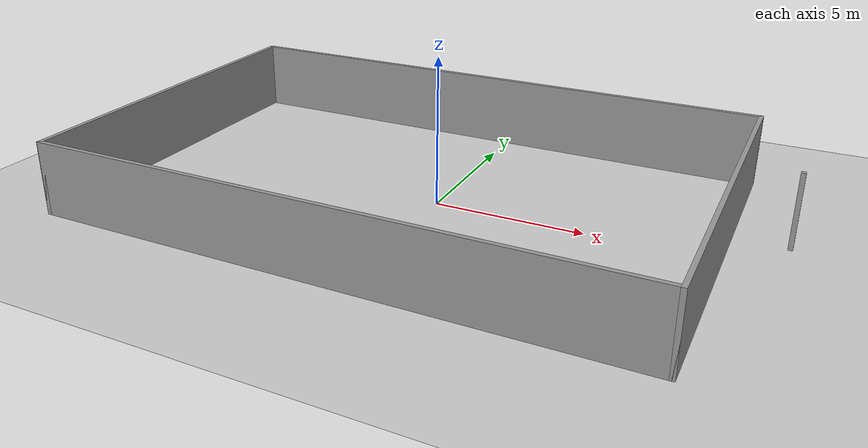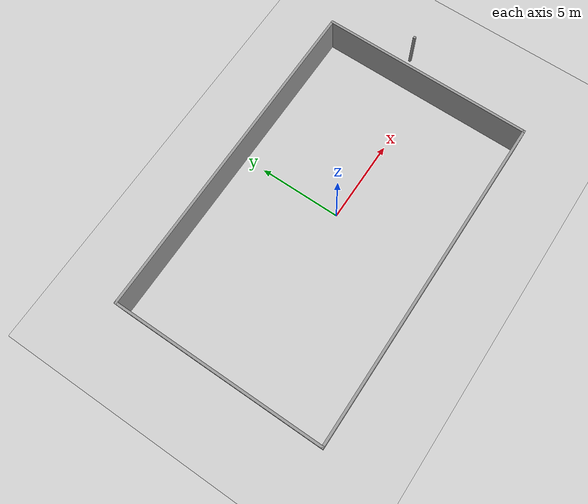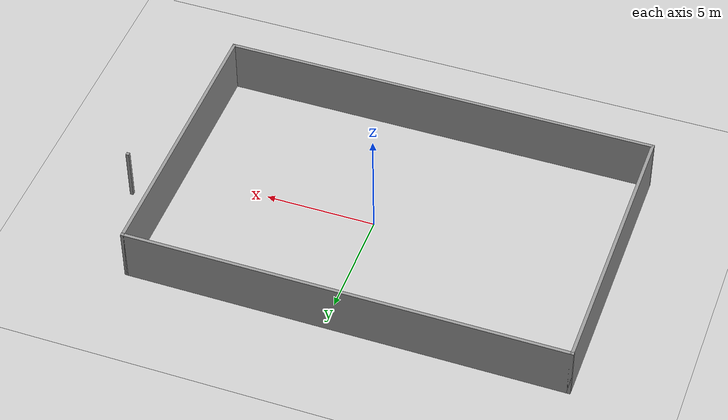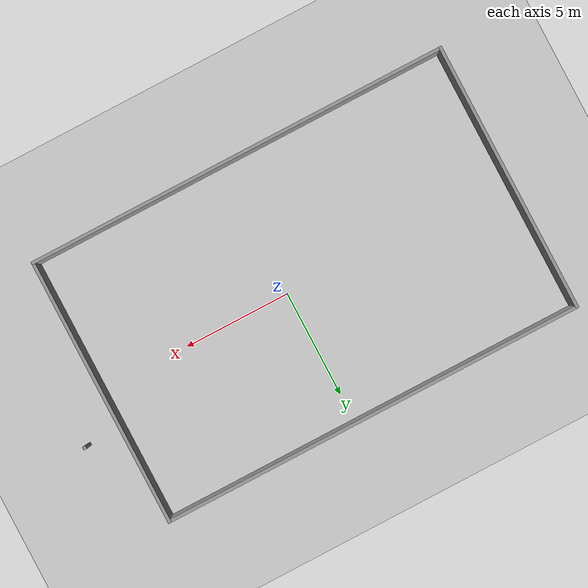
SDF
<?xml version="1.0" ?>
<sdf version="1.7">
  <world name="basic_room_world">
    <light name='sun' type='directional'>
      <cast_shadows>1</cast_shadows>
      <pose>0 0 10 0 0 0</pose>
      <diffuse>0.8 0.8 0.8 1</diffuse>
      <specular>0.2 0.2 0.2 1</specular>
      <attenuation>
        <range>1000</range>
        <constant>0.9</constant>
        <linear>0.01</linear>
        <quadratic>0.001</quadratic>
      </attenuation>
      <direction>-0.5 0.1 -0.9</direction>
    </light>

    <model name='ground_plane'>
      <static>1</static>
      <link name='link'>
        <collision name='collision'>
          <geometry>
            <plane>
              <normal>0 0 1</normal>
              <size>60 60</size>
            </plane>
          </geometry>
          <surface>
            <friction>
              <ode>
                <mu>1</mu>
                <mu2>1</mu2>
              </ode>
            </friction>
            <bounce>
              <restitution_coefficient>0</restitution_coefficient>
            </bounce>
            <contact>
              <ode>
                <max_vel>0.1</max_vel>
                <min_depth>0.001</min_depth>
              </ode>
            </contact>
          </surface>
        </collision>
        <visual name='visual'>
          <cast_shadows>0</cast_shadows>
          <geometry>
            <plane>
              <normal>0 0 1</normal>
              <size>60 60</size>
            </plane>
          </geometry>
          <material>
            <script>
              <uri>file://media/materials/scripts/gazebo.material</uri>
              <name>Gazebo/Grey</name>
            </script>
          </material>
        </visual>
      </link>
    </model>

    <include>
      <uri>model://basic_room</uri>
      <pose>0 0 0 0 0 0</pose>
    </include>
  </world>
</sdf>

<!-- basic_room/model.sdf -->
<sdf version='1.7'>
  <model name='basic_room'>
    <pose>0.819988 -0.012867 0 0 -0 0</pose>
    <link name='Wall_1'>
      <collision name='Wall_1_Collision'>
        <geometry>
          <box>
            <size>0.15 0.15 2.5</size>
          </box>
        </geometry>
        <pose>0 0 1.25 0 -0 0</pose>
      </collision>
      <visual name='Wall_1_Visual'>
        <pose>0 0 1.25 0 -0 0</pose>
        <geometry>
          <box>
            <size>0.15 0.15 2.5</size>
          </box>
        </geometry>
        <material>
          <script>
            <uri>file://media/materials/scripts/gazebo.material</uri>
            <name>Gazebo/Grey</name>
          </script>
          <ambient>1 1 1 1</ambient>
        </material>
        <meta>
          <layer>0</layer>
        </meta>
      </visual>
      <pose>10.7987 1.79242 0 0 -0 0</pose>
    </link>
    <link name='Wall_10'>
      <collision name='Wall_10_Collision'>
        <geometry>
          <box>
            <size>12.75 0.15 2.5</size>
          </box>
        </geometry>
        <pose>0 0 1.25 0 -0 0</pose>
      </collision>
      <visual name='Wall_10_Visual'>
        <pose>0 0 1.25 0 -0 0</pose>
        <geometry>
          <box>
            <size>12.75 0.15 2.5</size>
          </box>
        </geometry>
        <material>
          <script>
            <uri>file://media/materials/scripts/gazebo.material</uri>
            <name>Gazebo/Grey</name>
          </script>
          <ambient>1 1 1 1</ambient>
        </material>
        <meta>
          <layer>0</layer>
        </meta>
      </visual>
      <pose>-10.7987 0 0 0 -0 -1.5708</pose>
    </link>
    <link name='Wall_12'>
      <collision name='Wall_12_Collision'>
        <geometry>
          <box>
            <size>20 0.15 2.5</size>
          </box>
        </geometry>
        <pose>0 0 1.25 0 -0 0</pose>
      </collision>
      <visual name='Wall_12_Visual'>
        <pose>0 0 1.25 0 -0 0</pose>
        <geometry>
          <box>
            <size>20 0.15 2.5</size>
          </box>
        </geometry>
        <material>
          <script>
            <uri>file://media/materials/scripts/gazebo.material</uri>
            <name>Gazebo/Grey</name>
          </script>
          <ambient>1 1 1 1</ambient>
        </material>
        <meta>
          <layer>0</layer>
        </meta>
      </visual>
      <pose>-0.873738 -6.3 0 0 -0 0</pose>
    </link>
    <link name='Wall_13'>
      <collision name='Wall_13_Collision'>
        <geometry>
          <box>
            <size>12.75 0.15 2.5</size>
          </box>
        </geometry>
        <pose>0 0 1.25 0 -0 0</pose>
      </collision>
      <visual name='Wall_13_Visual'>
        <pose>0 0 1.25 0 -0 0</pose>
        <geometry>
          <box>
            <size>12.75 0.15 2.5</size>
          </box>
        </geometry>
        <material>
          <script>
            <uri>file://media/materials/scripts/gazebo.material</uri>
            <name>Gazebo/Grey</name>
          </script>
          <ambient>1 1 1 1</ambient>
        </material>
        <meta>
          <layer>0</layer>
        </meta>
      </visual>
      <pose>9.05126 0 0 0 -0 1.5708</pose>
    </link>
    <link name='Wall_6'>
      <collision name='Wall_6_Collision'>
        <geometry>
          <box>
            <size>20 0.15 2.5</size>
          </box>
        </geometry>
        <pose>0 0 1.25 0 -0 0</pose>
      </collision>
      <visual name='Wall_6_Visual'>
        <pose>0 0 1.25 0 -0 0</pose>
        <geometry>
          <box>
            <size>20 0.15 2.5</size>
          </box>
        </geometry>
        <material>
          <script>
            <uri>file://media/materials/scripts/gazebo.material</uri>
            <name>Gazebo/Grey</name>
          </script>
          <ambient>1 1 1 1</ambient>
        </material>
        <meta>
          <layer>0</layer>
        </meta>
      </visual>
      <pose>-0.873738 6.3 0 0 -0 0</pose>
    </link>
    <static>1</static>
  </model>
</sdf>
